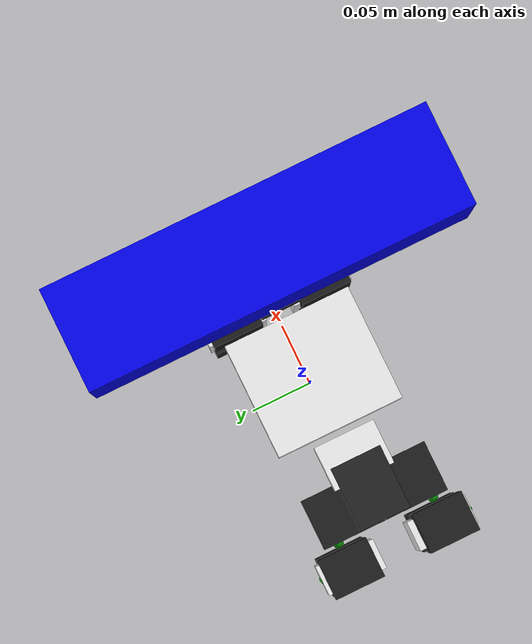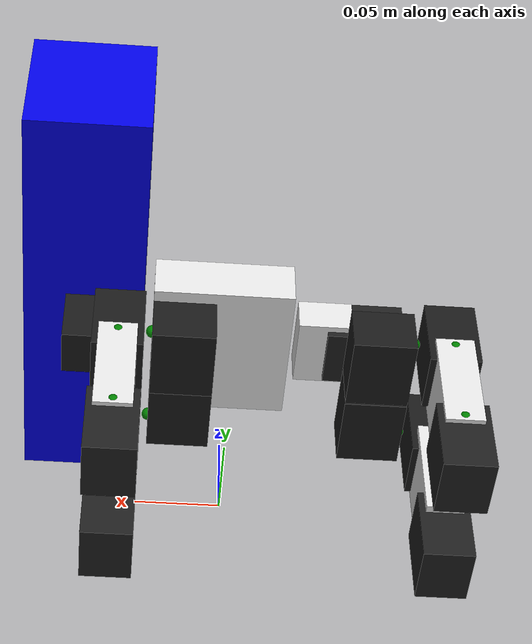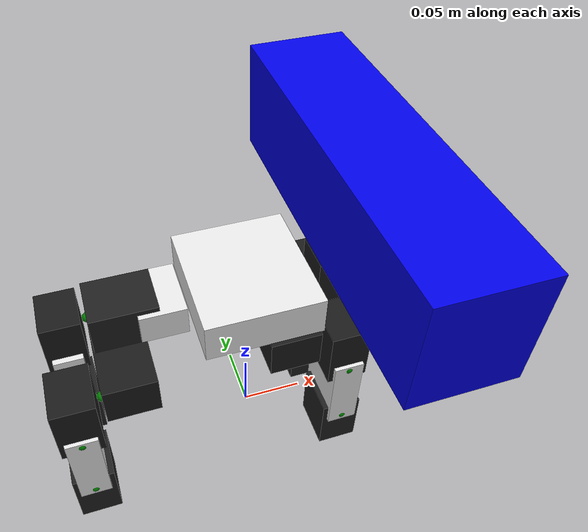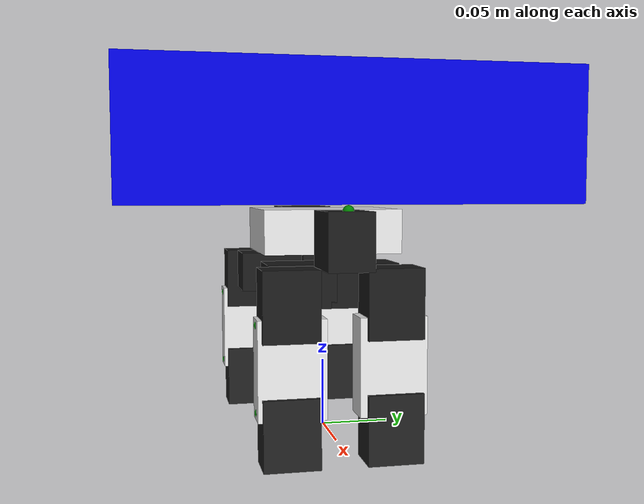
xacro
<?xml version="1.0" encoding="UTF-8"?>
<robot xmlns:xacro="http://www.ros.org/wiki/xacro" name="dog_picker">
  <xacro:include filename="$(find dynamixel_description)/urdf/constants.xacro"/>
  <xacro:include filename="$(find dynamixel_description)/urdf/AX12.xacro"/>
  <xacro:include filename="$(find dog_picker_description)/urdf/dog_picker_leg.xacro"/>
  <!-- negative green is the joint axis in y... -->
  <!-- z is blue and x is red... -->
  <link name="base_link">
    <visual>
      <origin rpy="0 0 0" xyz="0 0 0.150"/>
      <geometry>
        <box size="${ACM5_X_SIZE} ${ACM5_Y_SIZE} ${ACM5_Z_SIZE}"/>
      </geometry>
      <material name="DimWhite">
        <color rgba="0.9 0.9 0.9 1.0"/>
      </material>
    </visual>
  </link>
  <joint name="robotis_part_3" type="fixed">
    <origin xyz="${ACM5_X_SIZE/2 + AX12_Z_SIZE + AX12_Z_CENTER + 2*F3_Z_SIZE} 0 ${ACM5_Z_SIZE/2 + 0.150}" rpy="${-90*M_PI/180} 0 ${-90*M_PI/180} "/>
    <parent link="base_link"/>
    <child link="dynamixel_AX12_3_link"/>
  </joint>
  <xacro:dynamixel_AX12_down number="3"/>
  <joint name="S1_kinect" type="fixed">
      <origin xyz="0 -0.050 0" rpy="0 0 0"/>
      <parent link="S-B_3_link"/>
      <child link="kinect_link"/>
    </joint>
  <link name="kinect_link">
    <visual>
      <origin rpy="0 0 0" xyz="0 0 0"/>
      <geometry>
        <box size="0.300 0.090 0.080"/>
      </geometry>
      <material name="Blue">
        <color rgba="0.0 0.0 0.9 1.0"/>
      </material>
    </visual>
  </link>
  <joint name="robotis_part_1" type="fixed">
    <origin xyz="-0.045 0 0.150" rpy="0 0 0"/>
    <parent link="base_link"/>
    <child link="butt_link"/>
  </joint>
  <link name="butt_link">
    <visual>
      <origin rpy="0 0 0" xyz="${-F2_Z_SIZE/2-F3_Z_SIZE} 0 0"/>
      <geometry>
        <box size="${F2_Z_SIZE} ${F2_Y_SIZE}  ${F2_X_SIZE} "/>
      </geometry>
      <material name="DimWhite">
        <color rgba="0.9 0.9 0.9 1.0"/>
      </material>
    </visual>
  </link>
    <joint name="S1_1" type="fixed">
      <origin xyz="${-F2_Z_SIZE- F3_Z_SIZE+ F2_Z_CENTER} ${-AX12_Y_CENTER} 0" rpy="0 ${90*M_PI/180} 0"/>
      <parent link="butt_link"/>
      <child link="S-B_1_link"/>
    </joint>

  <xacro:dynamixel_AX12_up number="1"/>
  <xacro:dog_picker_leg_right parent="base_link" dyn1="4" dyn2="16" dyn3="8" x_loc="${ACM5_X_SIZE/2}" y_loc="${-ACM5_Y_SIZE/2-AX12_Z_CENTER}" z_loc="${0.150-ACM5_Z_SIZE/2-F3_Z_SIZE-F10_Z_SIZE-AX12_X_SIZE/2}" r="0" p="0 " y="0" back="0"/>
  <xacro:dog_picker_leg_right parent="dynamixel_AX12_1_link" dyn1="11" dyn2="13" dyn3="15" x_loc="${F3_Z_SIZE+F10_Z_SIZE +AX12_X_SIZE}" y_loc="${F1_Y_CENTER+AX12_Z_SIZE+AX12_Z_CENTER}" z_loc="${-AX12_Y_SIZE}" r="0" p="${90*M_PI/180}" y="0" back="1"/>
  <xacro:dog_picker_leg_left parent="base_link" dyn1="5" dyn2="7" dyn3="9" x_loc="${ACM5_X_SIZE/2}" y_loc="${ ACM5_Y_SIZE/2+AX12_Z_CENTER}" z_loc="${0.150-ACM5_Z_SIZE/2-F3_Z_SIZE-F10_Z_SIZE-AX12_X_SIZE/2}" r="0" p="0 " y="0" back="0"/>
  <xacro:dog_picker_leg_left parent="dynamixel_AX12_1_link" dyn1="10" dyn2="12" dyn3="14" x_loc="${F3_Z_SIZE+F10_Z_SIZE +AX12_X_SIZE}" y_loc="${-F1_Y_CENTER}" z_loc="${-AX12_Y_SIZE}" r="0" p="${90*M_PI/180}" y="0" back="1"/>

</robot>

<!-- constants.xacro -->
<robot xmlns:xacro="http://www.ros.org/wiki/xacro" name="constants">
  <xacro:property name="M_PI" value="3.14159"/>
  <xacro:property name="M_SCALE" value="0.001"/>
  <xacro:property name="F10_HEIGHT" value="0.004"/>
  <xacro:property name="F4_HEIGHT" value="0.0525"/>
  <xacro:property name="F3_HEIGHT" value="0.009"/>
  <xacro:property name="AX12_HEIGHT" value="0.0385"/>
  <xacro:property name="AX12_WIDTH" value="0.038"/>
  <xacro:property name="F2_HEIGHT" value="0.0265"/>
  <xacro:property name="MESH_EXT" value="dae"/>

 <xacro:property name="AX12_X_CENTER" value="0"/>
  <xacro:property name="AX12_Y_CENTER" value="0.020"/>
  <xacro:property name="AX12_Z_CENTER" value="-0.0135"/>
  <xacro:property name="AX12_X_SIZE" value="0.032"/>
  <xacro:property name="AX12_Y_SIZE" value="0.040"/>
  <xacro:property name="AX12_Z_SIZE" value="0.050"/>

  <xacro:property name="AX12_VELOCITY" value="0.5"/>
  <xacro:property name="AX12_EFFORT" value="1000"/>

  <xacro:property name="F1_X_SIZE" value="0.039"/>
  <xacro:property name="F1_Y_SIZE" value="0.048"/><!-- fingers front back-->
  <xacro:property name="F1_Z_SIZE" value="0.034"/> <!-- fingers up and back-->
   <!-- center of box to hole where joint from ax12 goes-->
  <xacro:property name="F1_X_CENTER" value="0.009"/>
  <xacro:property name="F1_Y_CENTER" value="0.021"/>
  <xacro:property name="F1_Z_CENTER" value="0.005"/>

  <xacro:property name="F2_X_SIZE" value="0.024"/>
  <xacro:property name="F2_Y_SIZE" value="0.048"/><!-- fingers front back-->
  <xacro:property name="F2_Z_SIZE" value="0.035"/> <!-- fingers up-->
   <!--from center of box to hole where joint from ax12 goes-->
  <xacro:property name="F2_X_CENTER" value="0.000"/>
  <xacro:property name="F2_Y_CENTER" value="0.021"/>
  <xacro:property name="F2_Z_CENTER" value="0.0045"/>

  <xacro:property name="F3_Z_SIZE" value="0.005"/>
  <xacro:property name="F7_Z_SIZE" value="0.005"/>
  <xacro:property name="F10_Z_SIZE" value="0.002"/>

  <xacro:property name="ACM5_X_SIZE" value="0.090"/>
  <xacro:property name="ACM5_Y_SIZE" value="0.100"/>
  <xacro:property name="ACM5_Z_SIZE" value="0.032"/>

  <xacro:property name="S_B_RADIUS" value="0.004"/>

</robot>

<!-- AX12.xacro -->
<robot xmlns:xacro="http://www.ros.org/wiki/xacro" name="dynamixel">
  <xacro:include filename="$(find dynamixel_description)/urdf/constants.xacro"/>
  <xacro:macro name="dynamixel_AX12_up" params="number">
    <!---Kinematics for kdl tree and robot_state_publisher -->
         <link name="S-B_${number}_link">
        <visual>
        <origin xyz="0 0 0" rpy="0 0 0"/>
       <geometry>
          <sphere radius="${S_B_RADIUS}"/>
        </geometry>
        <material name="Green">
          <color rgba="0 0.5 0 1.0"/>
        </material>
      </visual>
    </link>
    <joint name="dynamixel_AX12_${number}_joint" type="revolute">
      <!--origin of whole dynamixel is at the center of the round part visible on the servo which is the joint -->
      <origin xyz="0 0 0" rpy="0 0 0"/>
      <!-- negative green is the joint axis... -->
      <axis xyz="0 -1 0"/>
      <limit effort="${AX12_EFFORT}" lower="${-150*M_PI/180}" upper="${150*M_PI/180}" velocity="${AX12_VELOCITY}"/>
      <parent link="S-B_${number}_link"/>
      <child link="dynamixel_AX12_${number}_link"/>
    </joint>
    <link name="dynamixel_AX12_${number}_link">
      <!---rviz -->
      <visual>
        <!--link origin is a delta from the joint to the center of the servo box-->
        <origin xyz="0 ${AX12_Y_CENTER} ${AX12_Z_CENTER}" rpy="0 0 0"/>
        <geometry>
          <box size="${AX12_X_SIZE} ${AX12_Y_SIZE} ${AX12_Z_SIZE}"/>
        </geometry>
        <material name="black"/>
      </visual>
    </link>
  </xacro:macro>
  <xacro:macro name="dynamixel_AX12_down" params="number">
    <link name="dynamixel_AX12_${number}_link">
      <!---rviz -->
      <visual>
        <!--link origin is a delta from the joint to the center of the servo box-->
        <origin xyz="0 ${0+AX12_Y_CENTER} ${0+AX12_Z_CENTER}" rpy="0 0 0"/>
        <geometry>
          <box size="${AX12_X_SIZE} ${AX12_Y_SIZE} ${AX12_Z_SIZE}"/>
        </geometry>
        <material name="Gray">
          <color rgba="0.1 0.1 0.1 1.0"/>
        </material>
      </visual>
    </link>
    <!---Kinematics for kdl tree and robot_state_publisher -->
    <joint name="dynamixel_AX12_${number}_joint" type="revolute">
      <!--origin of whole dynamixel is at the center of the round part visible on the servo which is the joint -->
           <origin xyz="0 0 0" rpy="0 0 0"/>
      <axis xyz="0 -1 0"/>
      <limit effort="${AX12_EFFORT}" lower="${-150*M_PI/180}" upper="${150*M_PI/180}" velocity="${AX12_VELOCITY}"/>
      <parent link="dynamixel_AX12_${number}_link"/>
      <child link="S-B_${number}_link"/>
    </joint>
     <link name="S-B_${number}_link">
        <visual>
        <origin xyz="0 0 0" rpy="0 0 0"/>
       <geometry>
          <sphere radius="${S_B_RADIUS}"/>
        </geometry>
        <material name="Green">
          <color rgba="0 0.5 0 1.0"/>
        </material>
      </visual>
    </link>
  </xacro:macro>
</robot>

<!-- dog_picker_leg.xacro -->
<robot xmlns:xacro="http://www.ros.org/wiki/xacro" name="dog_picker_leg">
  <xacro:include filename="$(find dynamixel_description)/urdf/constants.xacro"/>
  <xacro:include filename="$(find dynamixel_description)/urdf/AX12.xacro"/>
  <xacro:macro name="dog_picker_leg_right" params="parent dyn1 dyn2 dyn3 x_loc y_loc z_loc r p y back">
    <joint name="robotis_part_${dyn1}" type="fixed">
      <origin xyz="${x_loc} ${y_loc} ${z_loc}" rpy="${r+90*M_PI/180} ${p+-90*M_PI/180} ${y+back*M_PI}"/>
      <parent link="${parent}"/>
      <child link="dynamixel_AX12_${dyn1}_link"/>
    </joint>
    <xacro:dynamixel_AX12_down number="${dyn1}"/>
    <!-- this fixed joint is really just placing the revolute joint in the next ax12 that way I can just always pass 0 to ax12-->
    <joint name="S1_${dyn1}" type="fixed">
      <origin xyz="${-AX12_Z_SIZE-2*AX12_Z_CENTER} ${-AX12_X_SIZE/2 - F7_Z_SIZE}  ${AX12_Y_CENTER}" rpy="${-90*M_PI/180} 0 ${90*M_PI/180} "/>
      <parent link="S-B_${dyn1}_link"/>
      <child link="dynamixel_AX12_${dyn2}_link"/>
    </joint>
    <xacro:dynamixel_AX12_down number="${dyn2}"/>
      <joint name="S1_${dyn2}" type="fixed">
      <origin xyz="0 ${F2_Y_CENTER} ${F2_Z_SIZE-F2_Z_CENTER}" rpy="0 0 0"/>
      <parent link="S-B_${dyn2}_link"/>
      <child link="calf_link_${dyn3}"/>
    </joint>
    <link name="calf_link_${dyn3}">
      <visual>
        <origin rpy="0 0 0" xyz="0 0 0"/>
        <geometry>
          <box size="${F2_X_SIZE}  ${F2_Y_SIZE} ${F2_Z_SIZE*2}"/>
        </geometry>
        <material name="DimWhite">
          <color rgba="0.9 0.9 0.9 1.0"/>
        </material>
      </visual>
    </link>
      <joint name="S1_${dyn3}" type="fixed">
      <origin xyz="0 ${-F2_Y_CENTER} ${F2_Z_SIZE-F2_Z_CENTER}" rpy="0 ${180*M_PI/180} 0"/>
      <parent link="calf_link_${dyn3}"/>
      <child link="S-B_${dyn3}_link"/>
    </joint>
    <xacro:dynamixel_AX12_up number="${dyn3}"/>
  </xacro:macro>

  <xacro:macro name="dog_picker_leg_left" params="parent dyn1 dyn2 dyn3 x_loc y_loc z_loc r p y back">
    <joint name="robotis_part_${dyn1}" type="fixed">
      <origin xyz="${x_loc} ${y_loc} ${z_loc}" rpy="${r+-90*M_PI/180} ${p+90*M_PI/180} ${y+back*M_PI}"/>
      <parent link="${parent}"/>
      <child link="dynamixel_AX12_${dyn1}_link"/>
    </joint>

      <xacro:dynamixel_AX12_down number="${dyn1}"/>
    <!-- this fixed joint is really just placing the revolute joint in the next ax12 that way I can just always pass 0 to ax12-->
    <joint name="S1_${dyn1}" type="fixed">
      <origin xyz="${AX12_Z_SIZE+2*AX12_Z_CENTER} ${-AX12_X_SIZE/2 - F7_Z_SIZE}  ${AX12_Y_CENTER}" rpy="${-90*M_PI/180} 0 ${-90*M_PI/180} "/>
      <parent link="S-B_${dyn1}_link"/>
      <child link="dynamixel_AX12_${dyn2}_link"/>
    </joint>
    <xacro:dynamixel_AX12_down number="${dyn2}"/>
      <joint name="S1_${dyn2}" type="fixed">
      <origin xyz="0 ${F2_Y_CENTER} ${F2_Z_SIZE-F2_Z_CENTER}" rpy="0 0 0"/>
      <parent link="S-B_${dyn2}_link"/>
      <child link="calf_link_${dyn3}"/>
    </joint>
    <link name="calf_link_${dyn3}">
      <visual>
        <origin rpy="0 0 0" xyz="0 0 0"/>
        <geometry>
          <box size="${F2_X_SIZE}  ${F2_Y_SIZE} ${F2_Z_SIZE*2}"/>
        </geometry>
        <material name="DimWhite">
          <color rgba="0.9 0.9 0.9 1.0"/>
        </material>
      </visual>
    </link>
      <joint name="S1_${dyn3}" type="fixed">
      <origin xyz="0 ${-F2_Y_CENTER} ${F2_Z_SIZE-F2_Z_CENTER}" rpy="0 ${180*M_PI/180} 0"/>
      <parent link="calf_link_${dyn3}"/>
      <child link="S-B_${dyn3}_link"/>
    </joint>
    <xacro:dynamixel_AX12_up number="${dyn3}"/>
  </xacro:macro>
</robot>
